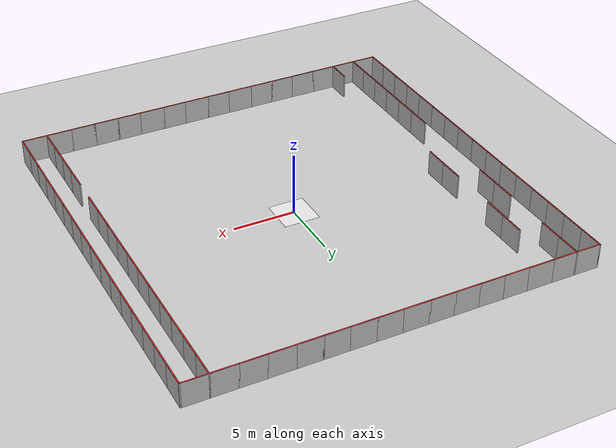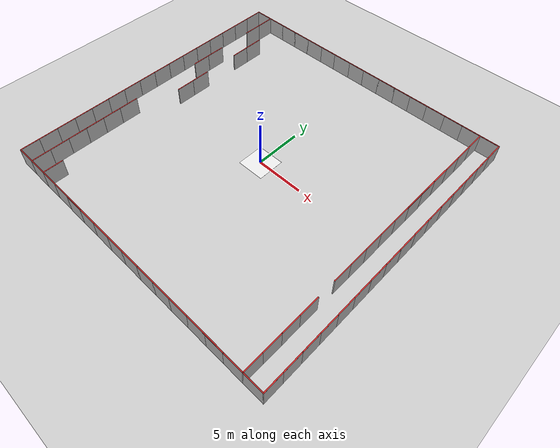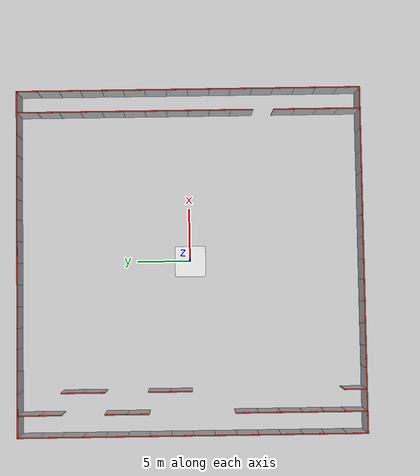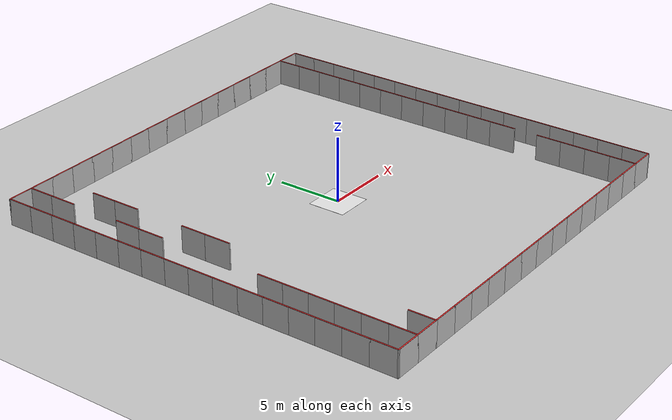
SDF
<sdf version="1.7">
 <world name="default">
  <model name="ground_plane">
   <static>true</static>
   <link name="link">
    <collision name="collision">
     <geometry><plane><normal>0 0 1</normal><size>100 100</size></plane></geometry>
     <surface><friction><ode><mu>100</mu><mu2>50</mu2></ode></friction></surface>
    </collision>
    <visual name="visual">
     <cast_shadows>0</cast_shadows>
     <geometry><plane><normal>0 0 1</normal><size>100 100</size></plane></geometry>
     <material>
      <script><uri>file://media/materials/scripts/gazebo.material</uri><name>Gazebo/Grey</name></script>
     </material>
    </visual>
   </link>
  </model>
  <light name="sun" type="directional">
   <pose>0 0 10 0 -0 0</pose>
   <diffuse>0.8 0.8 0.8 1</diffuse>
   <specular>0.2 0.2 0.2 1</specular>
   <attenuation>
    <range>1000</range>
    <constant>0.9</constant>
    <linear>0.01</linear>
    <quadratic>0.001</quadratic>
   </attenuation>
   <direction>-0.5 0.1 -0.9</direction>
   <spot><inner_angle>0</inner_angle><outer_angle>0</outer_angle><falloff>0</falloff></spot>
  </light>
  <plugin name="maze" filename="libmaze_plugin.so"/>
  <physics type="ode">
   <max_step_size>0.001</max_step_size>
   <real_time_factor>1</real_time_factor>
   <real_time_update_rate>1000</real_time_update_rate>
  </physics>
  <gravity>0 0 -9.8</gravity>
  <magnetic_field>6e-06 2.3e-05 -4.2e-05</magnetic_field>
  <atmosphere type="adiabatic"/>
  <scene><ambient>0.4 0.4 0.4 1</ambient><background>0.7 0.7 0.7 1</background><shadows>1</shadows></scene>
  <audio><device>default</device></audio>
  <spherical_coordinates>
   <surface_model>EARTH_WGS84</surface_model>
   <latitude_deg>0</latitude_deg>
   <longitude_deg>0</longitude_deg>
   <elevation>0</elevation>
   <heading_deg>0</heading_deg>
  </spherical_coordinates>
  <model name="my_maze">
   <link name="base">
    <inertial>
     <mass>1</mass>
     <inertia>
      <ixx>1.39394</ixx>
      <ixy>0</ixy>
      <ixz>0</ixz>
      <iyy>0.696972</iyy>
      <iyz>0</iyz>
      <izz>0.696973</izz>
     </inertia>
     <pose>0 0 0.05 0 -0 0</pose>
    </inertial>
    <visual name="visual">
     <pose>0 0 0.0025 0 -0 0</pose>
     <geometry><box><size>2.892 2.892 0.005</size></box></geometry>
     <material>
      <script><uri>file://media/materials/scripts/gazebo.material</uri><name>Gazebo/White</name></script>
     </material>
    </visual>
    <collision name="collision">
     <pose>0 0 0.0025 0 -0 0</pose>
     <geometry><box><size>2.892 2.892 0.005</size></box></geometry>
     <surface><friction><ode><mu>1000</mu><mu2>1000</mu2></ode></friction></surface>
    </collision>
    <visual name="paint_v_0_0_W">
     <pose>-16 15 2.045 0 -0 1.5708</pose>
     <geometry><box><size>2.1 0.1 0.01</size></box></geometry>
     <material>
      <script><name>Gazebo/Red</name><uri>file://media/materials/scripts/gazebo.material</uri></script>
     </material>
    </visual>
    <visual name="v_0_0_W">
     <pose>-16 15 1.045 0 -0 1.5708</pose>
     <geometry><box><size>2.1 0.1 1.99</size></box></geometry>
    </visual>
    <collision name="p_0_0_W">
     <pose>-16 15 1.05 0 -0 1.5708</pose>
     <geometry><box><size>2.1 0.1 2</size></box></geometry>
    </collision>
    <visual name="paint_v_0_1_W">
     <pose>-14 15 2.045 0 -0 1.5708</pose>
     <geometry><box><size>2.1 0.1 0.01</size></box></geometry>
     <material>
      <script><name>Gazebo/Red</name><uri>file://media/materials/scripts/gazebo.material</uri></script>
     </material>
    </visual>
    <visual name="v_0_1_W">
     <pose>-14 15 1.045 0 -0 1.5708</pose>
     <geometry><box><size>2.1 0.1 1.99</size></box></geometry>
    </visual>
    <collision name="p_0_1_W">
     <pose>-14 15 1.05 0 -0 1.5708</pose>
     <geometry><box><size>2.1 0.1 2</size></box></geometry>
    </collision>
    <visual name="paint_v_0_15_W">
     <pose>14 15 2.045 0 -0 1.5708</pose>
     <geometry><box><size>2.1 0.1 0.01</size></box></geometry>
     <material>
      <script><name>Gazebo/Red</name><uri>file://media/materials/scripts/gazebo.material</uri></script>
     </material>
    </visual>
    <visual name="v_0_15_W">
     <pose>14 15 1.045 0 -0 1.5708</pose>
     <geometry><box><size>2.1 0.1 1.99</size></box></geometry>
    </visual>
    <collision name="p_0_15_W">
     <pose>14 15 1.05 0 -0 1.5708</pose>
     <geometry><box><size>2.1 0.1 2</size></box></geometry>
    </collision>
    <visual name="paint_v_1_0_W">
     <pose>-16 13 2.045 0 -0 1.5708</pose>
     <geometry><box><size>2.1 0.1 0.01</size></box></geometry>
     <material>
      <script><name>Gazebo/Red</name><uri>file://media/materials/scripts/gazebo.material</uri></script>
     </material>
    </visual>
    <visual name="v_1_0_W">
     <pose>-16 13 1.045 0 -0 1.5708</pose>
     <geometry><box><size>2.1 0.1 1.99</size></box></geometry>
    </visual>
    <collision name="p_1_0_W">
     <pose>-16 13 1.05 0 -0 1.5708</pose>
     <geometry><box><size>2.1 0.1 2</size></box></geometry>
    </collision>
    <visual name="paint_v_1_1_W">
     <pose>-14 13 2.045 0 -0 1.5708</pose>
     <geometry><box><size>2.1 0.1 0.01</size></box></geometry>
     <material>
      <script><name>Gazebo/Red</name><uri>file://media/materials/scripts/gazebo.material</uri></script>
     </material>
    </visual>
    <visual name="v_1_1_W">
     <pose>-14 13 1.045 0 -0 1.5708</pose>
     <geometry><box><size>2.1 0.1 1.99</size></box></geometry>
    </visual>
    <collision name="p_1_1_W">
     <pose>-14 13 1.05 0 -0 1.5708</pose>
     <geometry><box><size>2.1 0.1 2</size></box></geometry>
    </collision>
    <visual name="paint_v_1_15_W">
     <pose>14 13 2.045 0 -0 1.5708</pose>
     <geometry><box><size>2.1 0.1 0.01</size></box></geometry>
     <material>
      <script><name>Gazebo/Red</name><uri>file://media/materials/scripts/gazebo.material</uri></script>
     </material>
    </visual>
    <visual name="v_1_15_W">
     <pose>14 13 1.045 0 -0 1.5708</pose>
     <geometry><box><size>2.1 0.1 1.99</size></box></geometry>
    </visual>
    <collision name="p_1_15_W">
     <pose>14 13 1.05 0 -0 1.5708</pose>
     <geometry><box><size>2.1 0.1 2</size></box></geometry>
    </collision>
    <visual name="paint_v_2_0_W">
     <pose>-16 11 2.045 0 -0 1.5708</pose>
     <geometry><box><size>2.1 0.1 0.01</size></box></geometry>
     <material>
      <script><name>Gazebo/Red</name><uri>file://media/materials/scripts/gazebo.material</uri></script>
     </material>
    </visual>
    <visual name="v_2_0_W">
     <pose>-16 11 1.045 0 -0 1.5708</pose>
     <geometry><box><size>2.1 0.1 1.99</size></box></geometry>
    </visual>
    <collision name="p_2_0_W">
     <pose>-16 11 1.05 0 -0 1.5708</pose>
     <geometry><box><size>2.1 0.1 2</size></box></geometry>
    </collision>
    <visual name="paint_v_2_2_W">
     <pose>-12 11 2.045 0 -0 1.5708</pose>
     <geometry><box><size>2.1 0.1 0.01</size></box></geometry>
     <material>
      <script><name>Gazebo/Red</name><uri>file://media/materials/scripts/gazebo.material</uri></script>
     </material>
    </visual>
    <visual name="v_2_2_W">
     <pose>-12 11 1.045 0 -0 1.5708</pose>
     <geometry><box><size>2.1 0.1 1.99</size></box></geometry>
    </visual>
    <collision name="p_2_2_W">
     <pose>-12 11 1.05 0 -0 1.5708</pose>
     <geometry><box><size>2.1 0.1 2</size></box></geometry>
    </collision>
    <visual name="paint_v_2_15_W">
     <pose>14 11 2.045 0 -0 1.5708</pose>
     <geometry><box><size>2.1 0.1 0.01</size></box></geometry>
     <material>
      <script><name>Gazebo/Red</name><uri>file://media/materials/scripts/gazebo.material</uri></script>
     </material>
    </visual>
    <visual name="v_2_15_W">
     <pose>14 11 1.045 0 -0 1.5708</pose>
     <geometry><box><size>2.1 0.1 1.99</size></box></geometry>
    </visual>
    <collision name="p_2_15_W">
     <pose>14 11 1.05 0 -0 1.5708</pose>
     <geometry><box><size>2.1 0.1 2</size></box></geometry>
    </collision>
    <visual name="paint_v_3_0_W">
     <pose>-16 9 2.045 0 -0 1.5708</pose>
     <geometry><box><size>2.1 0.1 0.01</size></box></geometry>
     <material>
      <script><name>Gazebo/Red</name><uri>file://media/materials/scripts/gazebo.material</uri></script>
     </material>
    </visual>
    <visual name="v_3_0_W">
     <pose>-16 9 1.045 0 -0 1.5708</pose>
     <geometry><box><size>2.1 0.1 1.99</size></box></geometry>
    </visual>
    <collision name="p_3_0_W">
     <pose>-16 9 1.05 0 -0 1.5708</pose>
     <geometry><box><size>2.1 0.1 2</size></box></geometry>
    </collision>
    <visual name="paint_v_3_2_W">
     <pose>-12 9 2.045 0 -0 1.5708</pose>
     <geometry><box><size>2.1 0.1 0.01</size></box></geometry>
     <material>
      <script><name>Gazebo/Red</name><uri>file://media/materials/scripts/gazebo.material</uri></script>
     </material>
    </visual>
    <visual name="v_3_2_W">
     <pose>-12 9 1.045 0 -0 1.5708</pose>
     <geometry><box><size>2.1 0.1 1.99</size></box></geometry>
    </visual>
    <collision name="p_3_2_W">
     <pose>-12 9 1.05 0 -0 1.5708</pose>
     <geometry><box><size>2.1 0.1 2</size></box></geometry>
    </collision>
    <visual name="paint_v_3_15_W">
     <pose>14 9 2.045 0 -0 1.5708</pose>
     <geometry><box><size>2.1 0.1 0.01</size></box></geometry>
     <material>
      <script><name>Gazebo/Red</name><uri>file://media/materials/scripts/gazebo.material</uri></script>
     </material>
    </visual>
    <visual name="v_3_15_W">
     <pose>14 9 1.045 0 -0 1.5708</pose>
     <geometry><box><size>2.1 0.1 1.99</size></box></geometry>
    </visual>
    <collision name="p_3_15_W">
     <pose>14 9 1.05 0 -0 1.5708</pose>
     <geometry><box><size>2.1 0.1 2</size></box></geometry>
    </collision>
    <visual name="paint_v_4_0_W">
     <pose>-16 7 2.045 0 -0 1.5708</pose>
     <geometry><box><size>2.1 0.1 0.01</size></box></geometry>
     <material>
      <script><name>Gazebo/Red</name><uri>file://media/materials/scripts/gazebo.material</uri></script>
     </material>
    </visual>
    <visual name="v_4_0_W">
     <pose>-16 7 1.045 0 -0 1.5708</pose>
     <geometry><box><size>2.1 0.1 1.99</size></box></geometry>
    </visual>
    <collision name="p_4_0_W">
     <pose>-16 7 1.05 0 -0 1.5708</pose>
     <geometry><box><size>2.1 0.1 2</size></box></geometry>
    </collision>
    <visual name="paint_v_4_1_W">
     <pose>-14 7 2.045 0 -0 1.5708</pose>
     <geometry><box><size>2.1 0.1 0.01</size></box></geometry>
     <material>
      <script><name>Gazebo/Red</name><uri>file://media/materials/scripts/gazebo.material</uri></script>
     </material>
    </visual>
    <visual name="v_4_1_W">
     <pose>-14 7 1.045 0 -0 1.5708</pose>
     <geometry><box><size>2.1 0.1 1.99</size></box></geometry>
    </visual>
    <collision name="p_4_1_W">
     <pose>-14 7 1.05 0 -0 1.5708</pose>
     <geometry><box><size>2.1 0.1 2</size></box></geometry>
    </collision>
    <visual name="paint_v_4_15_W">
     <pose>14 7 2.045 0 -0 1.5708</pose>
     <geometry><box><size>2.1 0.1 0.01</size></box></geometry>
     <material>
      <script><name>Gazebo/Red</name><uri>file://media/materials/scripts/gazebo.material</uri></script>
     </material>
    </visual>
    <visual name="v_4_15_W">
     <pose>14 7 1.045 0 -0 1.5708</pose>
     <geometry><box><size>2.1 0.1 1.99</size></box></geometry>
    </visual>
    <collision name="p_4_15_W">
     <pose>14 7 1.05 0 -0 1.5708</pose>
     <geometry><box><size>2.1 0.1 2</size></box></geometry>
    </collision>
    <visual name="paint_v_5_0_W">
     <pose>-16 5 2.045 0 -0 1.5708</pose>
     <geometry><box><size>2.1 0.1 0.01</size></box></geometry>
     <material>
      <script><name>Gazebo/Red</name><uri>file://media/materials/scripts/gazebo.material</uri></script>
     </material>
    </visual>
    <visual name="v_5_0_W">
     <pose>-16 5 1.045 0 -0 1.5708</pose>
     <geometry><box><size>2.1 0.1 1.99</size></box></geometry>
    </visual>
    <collision name="p_5_0_W">
     <pose>-16 5 1.05 0 -0 1.5708</pose>
     <geometry><box><size>2.1 0.1 2</size></box></geometry>
    </collision>
    <visual name="paint_v_5_1_W">
     <pose>-14 5 2.045 0 -0 1.5708</pose>
     <geometry><box><size>2.1 0.1 0.01</size></box></geometry>
     <material>
      <script><name>Gazebo/Red</name><uri>file://media/materials/scripts/gazebo.material</uri></script>
     </material>
    </visual>
    <visual name="v_5_1_W">
     <pose>-14 5 1.045 0 -0 1.5708</pose>
     <geometry><box><size>2.1 0.1 1.99</size></box></geometry>
    </visual>
    <collision name="p_5_1_W">
     <pose>-14 5 1.05 0 -0 1.5708</pose>
     <geometry><box><size>2.1 0.1 2</size></box></geometry>
    </collision>
    <visual name="paint_v_5_15_W">
     <pose>14 5 2.045 0 -0 1.5708</pose>
     <geometry><box><size>2.1 0.1 0.01</size></box></geometry>
     <material>
      <script><name>Gazebo/Red</name><uri>file://media/materials/scripts/gazebo.material</uri></script>
     </material>
    </visual>
    <visual name="v_5_15_W">
     <pose>14 5 1.045 0 -0 1.5708</pose>
     <geometry><box><size>2.1 0.1 1.99</size></box></geometry>
    </visual>
    <collision name="p_5_15_W">
     <pose>14 5 1.05 0 -0 1.5708</pose>
     <geometry><box><size>2.1 0.1 2</size></box></geometry>
    </collision>
    <visual name="paint_v_6_0_W">
     <pose>-16 3 2.045 0 -0 1.5708</pose>
     <geometry><box><size>2.1 0.1 0.01</size></box></geometry>
     <material>
      <script><name>Gazebo/Red</name><uri>file://media/materials/scripts/gazebo.material</uri></script>
     </material>
    </visual>
    <visual name="v_6_0_W">
     <pose>-16 3 1.045 0 -0 1.5708</pose>
     <geometry><box><size>2.1 0.1 1.99</size></box></geometry>
    </visual>
    <collision name="p_6_0_W">
     <pose>-16 3 1.05 0 -0 1.5708</pose>
     <geometry><box><size>2.1 0.1 2</size></box></geometry>
    </collision>
    <visual name="paint_v_6_2_W">
     <pose>-12 3 2.045 0 -0 1.5708</pose>
     <geometry><box><size>2.1 0.1 0.01</size></box></geometry>
     <material>
      <script><name>Gazebo/Red</name><uri>file://media/materials/scripts/gazebo.material</uri></script>
     </material>
    </visual>
    <visual name="v_6_2_W">
     <pose>-12 3 1.045 0 -0 1.5708</pose>
     <geometry><box><size>2.1 0.1 1.99</size></box></geometry>
    </visual>
    <collision name="p_6_2_W">
     <pose>-12 3 1.05 0 -0 1.5708</pose>
     <geometry><box><size>2.1 0.1 2</size></box></geometry>
    </collision>
    <visual name="paint_v_6_15_W">
     <pose>14 3 2.045 0 -0 1.5708</pose>
     <geometry><box><size>2.1 0.1 0.01</size></box></geometry>
     <material>
      <script><name>Gazebo/Red</name><uri>file://media/materials/scripts/gazebo.material</uri></script>
     </material>
    </visual>
    <visual name="v_6_15_W">
     <pose>14 3 1.045 0 -0 1.5708</pose>
     <geometry><box><size>2.1 0.1 1.99</size></box></geometry>
    </visual>
    <collision name="p_6_15_W">
     <pose>14 3 1.05 0 -0 1.5708</pose>
     <geometry><box><size>2.1 0.1 2</size></box></geometry>
    </collision>
    <visual name="paint_v_7_0_W">
     <pose>-16 1 2.045 0 -0 1.5708</pose>
     <geometry><box><size>2.1 0.1 0.01</size></box></geometry>
     <material>
      <script><name>Gazebo/Red</name><uri>file://media/materials/scripts/gazebo.material</uri></script>
     </material>
    </visual>
    <visual name="v_7_0_W">
     <pose>-16 1 1.045 0 -0 1.5708</pose>
     <geometry><box><size>2.1 0.1 1.99</size></box></geometry>
    </visual>
    <collision name="p_7_0_W">
     <pose>-16 1 1.05 0 -0 1.5708</pose>
     <geometry><box><size>2.1 0.1 2</size></box></geometry>
    </collision>
    <visual name="paint_v_7_2_W">
     <pose>-12 1 2.045 0 -0 1.5708</pose>
     <geometry><box><size>2.1 0.1 0.01</size></box></geometry>
     <material>
      <script><name>Gazebo/Red</name><uri>file://media/materials/scripts/gazebo.material</uri></script>
     </material>
    </visual>
    <visual name="v_7_2_W">
     <pose>-12 1 1.045 0 -0 1.5708</pose>
     <geometry><box><size>2.1 0.1 1.99</size></box></geometry>
    </visual>
    <collision name="p_7_2_W">
     <pose>-12 1 1.05 0 -0 1.5708</pose>
     <geometry><box><size>2.1 0.1 2</size></box></geometry>
    </collision>
    <visual name="paint_v_7_15_W">
     <pose>14 1 2.045 0 -0 1.5708</pose>
     <geometry><box><size>2.1 0.1 0.01</size></box></geometry>
     <material>
      <script><name>Gazebo/Red</name><uri>file://media/materials/scripts/gazebo.material</uri></script>
     </material>
    </visual>
    <visual name="v_7_15_W">
     <pose>14 1 1.045 0 -0 1.5708</pose>
     <geometry><box><size>2.1 0.1 1.99</size></box></geometry>
    </visual>
    <collision name="p_7_15_W">
     <pose>14 1 1.05 0 -0 1.5708</pose>
     <geometry><box><size>2.1 0.1 2</size></box></geometry>
    </collision>
    <visual name="paint_v_8_0_W">
     <pose>-16 -1 2.045 0 -0 1.5708</pose>
     <geometry><box><size>2.1 0.1 0.01</size></box></geometry>
     <material>
      <script><name>Gazebo/Red</name><uri>file://media/materials/scripts/gazebo.material</uri></script>
     </material>
    </visual>
    <visual name="v_8_0_W">
     <pose>-16 -1 1.045 0 -0 1.5708</pose>
     <geometry><box><size>2.1 0.1 1.99</size></box></geometry>
    </visual>
    <collision name="p_8_0_W">
     <pose>-16 -1 1.05 0 -0 1.5708</pose>
     <geometry><box><size>2.1 0.1 2</size></box></geometry>
    </collision>
    <visual name="paint_v_8_15_W">
     <pose>14 -1 2.045 0 -0 1.5708</pose>
     <geometry><box><size>2.1 0.1 0.01</size></box></geometry>
     <material>
      <script><name>Gazebo/Red</name><uri>file://media/materials/scripts/gazebo.material</uri></script>
     </material>
    </visual>
    <visual name="v_8_15_W">
     <pose>14 -1 1.045 0 -0 1.5708</pose>
     <geometry><box><size>2.1 0.1 1.99</size></box></geometry>
    </visual>
    <collision name="p_8_15_W">
     <pose>14 -1 1.05 0 -0 1.5708</pose>
     <geometry><box><size>2.1 0.1 2</size></box></geometry>
    </collision>
    <visual name="paint_v_9_0_W">
     <pose>-16 -3 2.045 0 -0 1.5708</pose>
     <geometry><box><size>2.1 0.1 0.01</size></box></geometry>
     <material>
      <script><name>Gazebo/Red</name><uri>file://media/materials/scripts/gazebo.material</uri></script>
     </material>
    </visual>
    <visual name="v_9_0_W">
     <pose>-16 -3 1.045 0 -0 1.5708</pose>
     <geometry><box><size>2.1 0.1 1.99</size></box></geometry>
    </visual>
    <collision name="p_9_0_W">
     <pose>-16 -3 1.05 0 -0 1.5708</pose>
     <geometry><box><size>2.1 0.1 2</size></box></geometry>
    </collision>
    <visual name="paint_v_9_15_W">
     <pose>14 -3 2.045 0 -0 1.5708</pose>
     <geometry><box><size>2.1 0.1 0.01</size></box></geometry>
     <material>
      <script><name>Gazebo/Red</name><uri>file://media/materials/scripts/gazebo.material</uri></script>
     </material>
    </visual>
    <visual name="v_9_15_W">
     <pose>14 -3 1.045 0 -0 1.5708</pose>
     <geometry><box><size>2.1 0.1 1.99</size></box></geometry>
    </visual>
    <collision name="p_9_15_W">
     <pose>14 -3 1.05 0 -0 1.5708</pose>
     <geometry><box><size>2.1 0.1 2</size></box></geometry>
    </collision>
    <visual name="paint_v_10_0_W">
     <pose>-16 -5 2.045 0 -0 1.5708</pose>
     <geometry><box><size>2.1 0.1 0.01</size></box></geometry>
     <material>
      <script><name>Gazebo/Red</name><uri>file://media/materials/scripts/gazebo.material</uri></script>
     </material>
    </visual>
    <visual name="v_10_0_W">
     <pose>-16 -5 1.045 0 -0 1.5708</pose>
     <geometry><box><size>2.1 0.1 1.99</size></box></geometry>
    </visual>
    <collision name="p_10_0_W">
     <pose>-16 -5 1.05 0 -0 1.5708</pose>
     <geometry><box><size>2.1 0.1 2</size></box></geometry>
    </collision>
    <visual name="paint_v_10_1_W">
     <pose>-14 -5 2.045 0 -0 1.5708</pose>
     <geometry><box><size>2.1 0.1 0.01</size></box></geometry>
     <material>
      <script><name>Gazebo/Red</name><uri>file://media/materials/scripts/gazebo.material</uri></script>
     </material>
    </visual>
    <visual name="v_10_1_W">
     <pose>-14 -5 1.045 0 -0 1.5708</pose>
     <geometry><box><size>2.1 0.1 1.99</size></box></geometry>
    </visual>
    <collision name="p_10_1_W">
     <pose>-14 -5 1.05 0 -0 1.5708</pose>
     <geometry><box><size>2.1 0.1 2</size></box></geometry>
    </collision>
    <visual name="paint_v_10_15_W">
     <pose>14 -5 2.045 0 -0 1.5708</pose>
     <geometry><box><size>2.1 0.1 0.01</size></box></geometry>
     <material>
      <script><name>Gazebo/Red</name><uri>file://media/materials/scripts/gazebo.material</uri></script>
     </material>
    </visual>
    <visual name="v_10_15_W">
     <pose>14 -5 1.045 0 -0 1.5708</pose>
     <geometry><box><size>2.1 0.1 1.99</size></box></geometry>
    </visual>
    <collision name="p_10_15_W">
     <pose>14 -5 1.05 0 -0 1.5708</pose>
     <geometry><box><size>2.1 0.1 2</size></box></geometry>
    </collision>
    <visual name="paint_v_11_0_W">
     <pose>-16 -7 2.045 0 -0 1.5708</pose>
     <geometry><box><size>2.1 0.1 0.01</size></box></geometry>
     <material>
      <script><name>Gazebo/Red</name><uri>file://media/materials/scripts/gazebo.material</uri></script>
     </material>
    </visual>
    <visual name="v_11_0_W">
     <pose>-16 -7 1.045 0 -0 1.5708</pose>
     <geometry><box><size>2.1 0.1 1.99</size></box></geometry>
    </visual>
    <collision name="p_11_0_W">
     <pose>-16 -7 1.05 0 -0 1.5708</pose>
     <geometry><box><size>2.1 0.1 2</size></box></geometry>
    </collision>
    <visual name="paint_v_11_1_W">
     <pose>-14 -7 2.045 0 -0 1.5708</pose>
     <geometry><box><size>2.1 0.1 0.01</size></box></geometry>
     <material>
      <script><name>Gazebo/Red</name><uri>file://media/materials/scripts/gazebo.material</uri></script>
     </material>
    </visual>
    <visual name="v_11_1_W">
     <pose>-14 -7 1.045 0 -0 1.5708</pose>
     <geometry><box><size>2.1 0.1 1.99</size></box></geometry>
    </visual>
    <collision name="p_11_1_W">
     <pose>-14 -7 1.05 0 -0 1.5708</pose>
     <geometry><box><size>2.1 0.1 2</size></box></geometry>
    </collision>
    <visual name="paint_v_12_0_W">
     <pose>-16 -9 2.045 0 -0 1.5708</pose>
     <geometry><box><size>2.1 0.1 0.01</size></box></geometry>
     <material>
      <script><name>Gazebo/Red</name><uri>file://media/materials/scripts/gazebo.material</uri></script>
     </material>
    </visual>
    <visual name="v_12_0_W">
     <pose>-16 -9 1.045 0 -0 1.5708</pose>
     <geometry><box><size>2.1 0.1 1.99</size></box></geometry>
    </visual>
    <collision name="p_12_0_W">
     <pose>-16 -9 1.05 0 -0 1.5708</pose>
     <geometry><box><size>2.1 0.1 2</size></box></geometry>
    </collision>
    <visual name="paint_v_12_1_W">
     <pose>-14 -9 2.045 0 -0 1.5708</pose>
     <geometry><box><size>2.1 0.1 0.01</size></box></geometry>
     <material>
      <script><name>Gazebo/Red</name><uri>file://media/materials/scripts/gazebo.material</uri></script>
     </material>
    </visual>
    <visual name="v_12_1_W">
     <pose>-14 -9 1.045 0 -0 1.5708</pose>
     <geometry><box><size>2.1 0.1 1.99</size></box></geometry>
    </visual>
    <collision name="p_12_1_W">
     <pose>-14 -9 1.05 0 -0 1.5708</pose>
     <geometry><box><size>2.1 0.1 2</size></box></geometry>
    </collision>
    <visual name="paint_v_12_15_W">
     <pose>14 -9 2.045 0 -0 1.5708</pose>
     <geometry><box><size>2.1 0.1 0.01</size></box></geometry>
     <material>
      <script><name>Gazebo/Red</name><uri>file://media/materials/scripts/gazebo.material</uri></script>
     </material>
    </visual>
    <visual name="v_12_15_W">
     <pose>14 -9 1.045 0 -0 1.5708</pose>
     <geometry><box><size>2.1 0.1 1.99</size></box></geometry>
    </visual>
    <collision name="p_12_15_W">
     <pose>14 -9 1.05 0 -0 1.5708</pose>
     <geometry><box><size>2.1 0.1 2</size></box></geometry>
    </collision>
    <visual name="paint_v_13_0_W">
     <pose>-16 -11 2.045 0 -0 1.5708</pose>
     <geometry><box><size>2.1 0.1 0.01</size></box></geometry>
     <material>
      <script><name>Gazebo/Red</name><uri>file://media/materials/scripts/gazebo.material</uri></script>
     </material>
    </visual>
    <visual name="v_13_0_W">
     <pose>-16 -11 1.045 0 -0 1.5708</pose>
     <geometry><box><size>2.1 0.1 1.99</size></box></geometry>
    </visual>
    <collision name="p_13_0_W">
     <pose>-16 -11 1.05 0 -0 1.5708</pose>
     <geometry><box><size>2.1 0.1 2</size></box></geometry>
    </collision>
    <visual name="paint_v_13_1_W">
     <pose>-14 -11 2.045 0 -0 1.5708</pose>
     <geometry><box><size>2.1 0.1 0.01</size></box></geometry>
     <material>
      <script><name>Gazebo/Red</name><uri>file://media/materials/scripts/gazebo.material</uri></script>
     </material>
    </visual>
    <visual name="v_13_1_W">
     <pose>-14 -11 1.045 0 -0 1.5708</pose>
     <geometry><box><size>2.1 0.1 1.99</size></box></geometry>
    </visual>
    <collision name="p_13_1_W">
     <pose>-14 -11 1.05 0 -0 1.5708</pose>
     <geometry><box><size>2.1 0.1 2</size></box></geometry>
    </collision>
    <visual name="paint_v_13_15_W">
     <pose>14 -11 2.045 0 -0 1.5708</pose>
     <geometry><box><size>2.1 0.1 0.01</size></box></geometry>
     <material>
      <script><name>Gazebo/Red</name><uri>file://media/materials/scripts/gazebo.material</uri></script>
     </material>
    </visual>
    <visual name="v_13_15_W">
     <pose>14 -11 1.045 0 -0 1.5708</pose>
     <geometry><box><size>2.1 0.1 1.99</size></box></geometry>
    </visual>
    <collision name="p_13_15_W">
     <pose>14 -11 1.05 0 -0 1.5708</pose>
     <geometry><box><size>2.1 0.1 2</size></box></geometry>
    </collision>
    <visual name="paint_v_14_0_W">
     <pose>-16 -13 2.045 0 -0 1.5708</pose>
     <geometry><box><size>2.1 0.1 0.01</size></box></geometry>
     <material>
      <script><name>Gazebo/Red</name><uri>file://media/materials/scripts/gazebo.material</uri></script>
     </material>
    </visual>
    <visual name="v_14_0_W">
     <pose>-16 -13 1.045 0 -0 1.5708</pose>
     <geometry><box><size>2.1 0.1 1.99</size></box></geometry>
    </visual>
    <collision name="p_14_0_W">
     <pose>-16 -13 1.05 0 -0 1.5708</pose>
     <geometry><box><size>2.1 0.1 2</size></box></geometry>
    </collision>
    <visual name="paint_v_14_1_W">
     <pose>-14 -13 2.045 0 -0 1.5708</pose>
     <geometry><box><size>2.1 0.1 0.01</size></box></geometry>
     <material>
      <script><name>Gazebo/Red</name><uri>file://media/materials/scripts/gazebo.material</uri></script>
     </material>
    </visual>
    <visual name="v_14_1_W">
     <pose>-14 -13 1.045 0 -0 1.5708</pose>
     <geometry><box><size>2.1 0.1 1.99</size></box></geometry>
    </visual>
    <collision name="p_14_1_W">
     <pose>-14 -13 1.05 0 -0 1.5708</pose>
     <geometry><box><size>2.1 0.1 2</size></box></geometry>
    </collision>
    <visual name="paint_v_14_15_W">
     <pose>14 -13 2.045 0 -0 1.5708</pose>
     <geometry><box><size>2.1 0.1 0.01</size></box></geometry>
     <material>
      <script><name>Gazebo/Red</name><uri>file://media/materials/scripts/gazebo.material</uri></script>
     </material>
    </visual>
    <visual name="v_14_15_W">
     <pose>14 -13 1.045 0 -0 1.5708</pose>
     <geometry><box><size>2.1 0.1 1.99</size></box></geometry>
    </visual>
    <collision name="p_14_15_W">
     <pose>14 -13 1.05 0 -0 1.5708</pose>
     <geometry><box><size>2.1 0.1 2</size></box></geometry>
    </collision>
    <visual name="paint_v_15_0_W">
     <pose>-16 -15 2.045 0 -0 1.5708</pose>
     <geometry><box><size>2.1 0.1 0.01</size></box></geometry>
     <material>
      <script><name>Gazebo/Red</name><uri>file://media/materials/scripts/gazebo.material</uri></script>
     </material>
    </visual>
    <visual name="v_15_0_W">
     <pose>-16 -15 1.045 0 -0 1.5708</pose>
     <geometry><box><size>2.1 0.1 1.99</size></box></geometry>
    </visual>
    <collision name="p_15_0_W">
     <pose>-16 -15 1.05 0 -0 1.5708</pose>
     <geometry><box><size>2.1 0.1 2</size></box></geometry>
    </collision>
    <visual name="paint_v_15_0_S">
     <pose>-15 -16 2.045 0 -0 0</pose>
     <geometry><box><size>2.1 0.1 0.01</size></box></geometry>
     <material>
      <script><name>Gazebo/Red</name><uri>file://media/materials/scripts/gazebo.material</uri></script>
     </material>
    </visual>
    <visual name="v_15_0_S">
     <pose>-15 -16 1.045 0 -0 0</pose>
     <geometry><box><size>2.1 0.1 1.99</size></box></geometry>
    </visual>
    <collision name="p_15_0_S">
     <pose>-15 -16 1.05 0 -0 0</pose>
     <geometry><box><size>2.1 0.1 2</size></box></geometry>
    </collision>
    <visual name="paint_v_15_1_W">
     <pose>-14 -15 2.045 0 -0 1.5708</pose>
     <geometry><box><size>2.1 0.1 0.01</size></box></geometry>
     <material>
      <script><name>Gazebo/Red</name><uri>file://media/materials/scripts/gazebo.material</uri></script>
     </material>
    </visual>
    <visual name="v_15_1_W">
     <pose>-14 -15 1.045 0 -0 1.5708</pose>
     <geometry><box><size>2.1 0.1 1.99</size></box></geometry>
    </visual>
    <collision name="p_15_1_W">
     <pose>-14 -15 1.05 0 -0 1.5708</pose>
     <geometry><box><size>2.1 0.1 2</size></box></geometry>
    </collision>
    <visual name="paint_v_15_1_S">
     <pose>-13 -16 2.045 0 -0 0</pose>
     <geometry><box><size>2.1 0.1 0.01</size></box></geometry>
     <material>
      <script><name>Gazebo/Red</name><uri>file://media/materials/scripts/gazebo.material</uri></script>
     </material>
    </visual>
    <visual name="v_15_1_S">
     <pose>-13 -16 1.045 0 -0 0</pose>
     <geometry><box><size>2.1 0.1 1.99</size></box></geometry>
    </visual>
    <collision name="p_15_1_S">
     <pose>-13 -16 1.05 0 -0 0</pose>
     <geometry><box><size>2.1 0.1 2</size></box></geometry>
    </collision>
    <visual name="paint_v_15_2_W">
     <pose>-12 -15 2.045 0 -0 1.5708</pose>
     <geometry><box><size>2.1 0.1 0.01</size></box></geometry>
     <material>
      <script><name>Gazebo/Red</name><uri>file://media/materials/scripts/gazebo.material</uri></script>
     </material>
    </visual>
    <visual name="v_15_2_W">
     <pose>-12 -15 1.045 0 -0 1.5708</pose>
     <geometry><box><size>2.1 0.1 1.99</size></box></geometry>
    </visual>
    <collision name="p_15_2_W">
     <pose>-12 -15 1.05 0 -0 1.5708</pose>
     <geometry><box><size>2.1 0.1 2</size></box></geometry>
    </collision>
    <visual name="paint_v_15_2_S">
     <pose>-11 -16 2.045 0 -0 0</pose>
     <geometry><box><size>2.1 0.1 0.01</size></box></geometry>
     <material>
      <script><name>Gazebo/Red</name><uri>file://media/materials/scripts/gazebo.material</uri></script>
     </material>
    </visual>
    <visual name="v_15_2_S">
     <pose>-11 -16 1.045 0 -0 0</pose>
     <geometry><box><size>2.1 0.1 1.99</size></box></geometry>
    </visual>
    <collision name="p_15_2_S">
     <pose>-11 -16 1.05 0 -0 0</pose>
     <geometry><box><size>2.1 0.1 2</size></box></geometry>
    </collision>
    <visual name="paint_v_15_3_S">
     <pose>-9 -16 2.045 0 -0 0</pose>
     <geometry><box><size>2.1 0.1 0.01</size></box></geometry>
     <material>
      <script><name>Gazebo/Red</name><uri>file://media/materials/scripts/gazebo.material</uri></script>
     </material>
    </visual>
    <visual name="v_15_3_S">
     <pose>-9 -16 1.045 0 -0 0</pose>
     <geometry><box><size>2.1 0.1 1.99</size></box></geometry>
    </visual>
    <collision name="p_15_3_S">
     <pose>-9 -16 1.05 0 -0 0</pose>
     <geometry><box><size>2.1 0.1 2</size></box></geometry>
    </collision>
    <visual name="paint_v_15_4_S">
     <pose>-7 -16 2.045 0 -0 0</pose>
     <geometry><box><size>2.1 0.1 0.01</size></box></geometry>
     <material>
      <script><name>Gazebo/Red</name><uri>file://media/materials/scripts/gazebo.material</uri></script>
     </material>
    </visual>
    <visual name="v_15_4_S">
     <pose>-7 -16 1.045 0 -0 0</pose>
     <geometry><box><size>2.1 0.1 1.99</size></box></geometry>
    </visual>
    <collision name="p_15_4_S">
     <pose>-7 -16 1.05 0 -0 0</pose>
     <geometry><box><size>2.1 0.1 2</size></box></geometry>
    </collision>
    <visual name="paint_v_15_5_S">
     <pose>-5 -16 2.045 0 -0 0</pose>
     <geometry><box><size>2.1 0.1 0.01</size></box></geometry>
     <material>
      <script><name>Gazebo/Red</name><uri>file://media/materials/scripts/gazebo.material</uri></script>
     </material>
    </visual>
    <visual name="v_15_5_S">
     <pose>-5 -16 1.045 0 -0 0</pose>
     <geometry><box><size>2.1 0.1 1.99</size></box></geometry>
    </visual>
    <collision name="p_15_5_S">
     <pose>-5 -16 1.05 0 -0 0</pose>
     <geometry><box><size>2.1 0.1 2</size></box></geometry>
    </collision>
    <visual name="paint_v_15_6_S">
     <pose>-3 -16 2.045 0 -0 0</pose>
     <geometry><box><size>2.1 0.1 0.01</size></box></geometry>
     <material>
      <script><name>Gazebo/Red</name><uri>file://media/materials/scripts/gazebo.material</uri></script>
     </material>
    </visual>
    <visual name="v_15_6_S">
     <pose>-3 -16 1.045 0 -0 0</pose>
     <geometry><box><size>2.1 0.1 1.99</size></box></geometry>
    </visual>
    <collision name="p_15_6_S">
     <pose>-3 -16 1.05 0 -0 0</pose>
     <geometry><box><size>2.1 0.1 2</size></box></geometry>
    </collision>
    <visual name="paint_v_15_7_S">
     <pose>-1 -16 2.045 0 -0 0</pose>
     <geometry><box><size>2.1 0.1 0.01</size></box></geometry>
     <material>
      <script><name>Gazebo/Red</name><uri>file://media/materials/scripts/gazebo.material</uri></script>
     </material>
    </visual>
    <visual name="v_15_7_S">
     <pose>-1 -16 1.045 0 -0 0</pose>
     <geometry><box><size>2.1 0.1 1.99</size></box></geometry>
    </visual>
    <collision name="p_15_7_S">
     <pose>-1 -16 1.05 0 -0 0</pose>
     <geometry><box><size>2.1 0.1 2</size></box></geometry>
    </collision>
    <visual name="paint_v_15_8_S">
     <pose>1 -16 2.045 0 -0 0</pose>
     <geometry><box><size>2.1 0.1 0.01</size></box></geometry>
     <material>
      <script><name>Gazebo/Red</name><uri>file://media/materials/scripts/gazebo.material</uri></script>
     </material>
    </visual>
    <visual name="v_15_8_S">
     <pose>1 -16 1.045 0 -0 0</pose>
     <geometry><box><size>2.1 0.1 1.99</size></box></geometry>
    </visual>
    <collision name="p_15_8_S">
     <pose>1 -16 1.05 0 -0 0</pose>
     <geometry><box><size>2.1 0.1 2</size></box></geometry>
    </collision>
    <visual name="paint_v_15_9_S">
     <pose>3 -16 2.045 0 -0 0</pose>
     <geometry><box><size>2.1 0.1 0.01</size></box></geometry>
     <material>
      <script><name>Gazebo/Red</name><uri>file://media/materials/scripts/gazebo.material</uri></script>
     </material>
    </visual>
    <visual name="v_15_9_S">
     <pose>3 -16 1.045 0 -0 0</pose>
     <geometry><box><size>2.1 0.1 1.99</size></box></geometry>
    </visual>
    <collision name="p_15_9_S">
     <pose>3 -16 1.05 0 -0 0</pose>
     <geometry><box><size>2.1 0.1 2</size></box></geometry>
    </collision>
    <visual name="paint_v_15_10_S">
     <pose>5 -16 2.045 0 -0 0</pose>
     <geometry><box><size>2.1 0.1 0.01</size></box></geometry>
     <material>
      <script><name>Gazebo/Red</name><uri>file://media/materials/scripts/gazebo.material</uri></script>
     </material>
    </visual>
    <visual name="v_15_10_S">
     <pose>5 -16 1.045 0 -0 0</pose>
     <geometry><box><size>2.1 0.1 1.99</size></box></geometry>
    </visual>
    <collision name="p_15_10_S">
     <pose>5 -16 1.05 0 -0 0</pose>
     <geometry><box><size>2.1 0.1 2</size></box></geometry>
    </collision>
    <visual name="paint_v_15_11_S">
     <pose>7 -16 2.045 0 -0 0</pose>
     <geometry><box><size>2.1 0.1 0.01</size></box></geometry>
     <material>
      <script><name>Gazebo/Red</name><uri>file://media/materials/scripts/gazebo.material</uri></script>
     </material>
    </visual>
    <visual name="v_15_11_S">
     <pose>7 -16 1.045 0 -0 0</pose>
     <geometry><box><size>2.1 0.1 1.99</size></box></geometry>
    </visual>
    <collision name="p_15_11_S">
     <pose>7 -16 1.05 0 -0 0</pose>
     <geometry><box><size>2.1 0.1 2</size></box></geometry>
    </collision>
    <visual name="paint_v_15_12_S">
     <pose>9 -16 2.045 0 -0 0</pose>
     <geometry><box><size>2.1 0.1 0.01</size></box></geometry>
     <material>
      <script><name>Gazebo/Red</name><uri>file://media/materials/scripts/gazebo.material</uri></script>
     </material>
    </visual>
    <visual name="v_15_12_S">
     <pose>9 -16 1.045 0 -0 0</pose>
     <geometry><box><size>2.1 0.1 1.99</size></box></geometry>
    </visual>
    <collision name="p_15_12_S">
     <pose>9 -16 1.05 0 -0 0</pose>
     <geometry><box><size>2.1 0.1 2</size></box></geometry>
    </collision>
    <visual name="paint_v_15_13_S">
     <pose>11 -16 2.045 0 -0 0</pose>
     <geometry><box><size>2.1 0.1 0.01</size></box></geometry>
     <material>
      <script><name>Gazebo/Red</name><uri>file://media/materials/scripts/gazebo.material</uri></script>
     </material>
    </visual>
    <visual name="v_15_13_S">
     <pose>11 -16 1.045 0 -0 0</pose>
     <geometry><box><size>2.1 0.1 1.99</size></box></geometry>
    </visual>
    <collision name="p_15_13_S">
     <pose>11 -16 1.05 0 -0 0</pose>
     <geometry><box><size>2.1 0.1 2</size></box></geometry>
    </collision>
    <visual name="paint_v_15_14_S">
     <pose>13 -16 2.045 0 -0 0</pose>
     <geometry><box><size>2.1 0.1 0.01</size></box></geometry>
     <material>
      <script><name>Gazebo/Red</name><uri>file://media/materials/scripts/gazebo.material</uri></script>
     </material>
    </visual>
    <visual name="v_15_14_S">
     <pose>13 -16 1.045 0 -0 0</pose>
     <geometry><box><size>2.1 0.1 1.99</size></box></geometry>
    </visual>
    <collision name="p_15_14_S">
     <pose>13 -16 1.05 0 -0 0</pose>
     <geometry><box><size>2.1 0.1 2</size></box></geometry>
    </collision>
    <visual name="paint_v_15_15_W">
     <pose>14 -15 2.045 0 -0 1.5708</pose>
     <geometry><box><size>2.1 0.1 0.01</size></box></geometry>
     <material>
      <script><name>Gazebo/Red</name><uri>file://media/materials/scripts/gazebo.material</uri></script>
     </material>
    </visual>
    <visual name="v_15_15_W">
     <pose>14 -15 1.045 0 -0 1.5708</pose>
     <geometry><box><size>2.1 0.1 1.99</size></box></geometry>
    </visual>
    <collision name="p_15_15_W">
     <pose>14 -15 1.05 0 -0 1.5708</pose>
     <geometry><box><size>2.1 0.1 2</size></box></geometry>
    </collision>
    <visual name="paint_v_15_15_S">
     <pose>15 -16 2.045 0 -0 0</pose>
     <geometry><box><size>2.1 0.1 0.01</size></box></geometry>
     <material>
      <script><name>Gazebo/Red</name><uri>file://media/materials/scripts/gazebo.material</uri></script>
     </material>
    </visual>
    <visual name="v_15_15_S">
     <pose>15 -16 1.045 0 -0 0</pose>
     <geometry><box><size>2.1 0.1 1.99</size></box></geometry>
    </visual>
    <collision name="p_15_15_S">
     <pose>15 -16 1.05 0 -0 0</pose>
     <geometry><box><size>2.1 0.1 2</size></box></geometry>
    </collision>
    <visual name="paint_v_0_15_E">
     <pose>16 15 2.045 0 -0 1.5708</pose>
     <geometry><box><size>2.1 0.1 0.01</size></box></geometry>
     <material>
      <script><name>Gazebo/Red</name><uri>file://media/materials/scripts/gazebo.material</uri></script>
     </material>
    </visual>
    <visual name="v_0_15_E">
     <pose>16 15 1.045 0 -0 1.5708</pose>
     <geometry><box><size>2.1 0.1 1.99</size></box></geometry>
    </visual>
    <collision name="p_0_15_E">
     <pose>16 15 1.05 0 -0 1.5708</pose>
     <geometry><box><size>2.1 0.1 2</size></box></geometry>
    </collision>
    <visual name="paint_v_0_0_N">
     <pose>-15 16 2.045 0 -0 0</pose>
     <geometry><box><size>2.1 0.1 0.01</size></box></geometry>
     <material>
      <script><name>Gazebo/Red</name><uri>file://media/materials/scripts/gazebo.material</uri></script>
     </material>
    </visual>
    <visual name="v_0_0_N">
     <pose>-15 16 1.045 0 -0 0</pose>
     <geometry><box><size>2.1 0.1 1.99</size></box></geometry>
    </visual>
    <collision name="p_0_0_N">
     <pose>-15 16 1.05 0 -0 0</pose>
     <geometry><box><size>2.1 0.1 2</size></box></geometry>
    </collision>
    <visual name="paint_v_1_15_E">
     <pose>16 13 2.045 0 -0 1.5708</pose>
     <geometry><box><size>2.1 0.1 0.01</size></box></geometry>
     <material>
      <script><name>Gazebo/Red</name><uri>file://media/materials/scripts/gazebo.material</uri></script>
     </material>
    </visual>
    <visual name="v_1_15_E">
     <pose>16 13 1.045 0 -0 1.5708</pose>
     <geometry><box><size>2.1 0.1 1.99</size></box></geometry>
    </visual>
    <collision name="p_1_15_E">
     <pose>16 13 1.05 0 -0 1.5708</pose>
     <geometry><box><size>2.1 0.1 2</size></box></geometry>
    </collision>
    <visual name="paint_v_0_1_N">
     <pose>-13 16 2.045 0 -0 0</pose>
     <geometry><box><size>2.1 0.1 0.01</size></box></geometry>
     <material>
      <script><name>Gazebo/Red</name><uri>file://media/materials/scripts/gazebo.material</uri></script>
     </material>
    </visual>
    <visual name="v_0_1_N">
     <pose>-13 16 1.045 0 -0 0</pose>
     <geometry><box><size>2.1 0.1 1.99</size></box></geometry>
    </visual>
    <collision name="p_0_1_N">
     <pose>-13 16 1.05 0 -0 0</pose>
     <geometry><box><size>2.1 0.1 2</size></box></geometry>
    </collision>
    <visual name="paint_v_2_15_E">
     <pose>16 11 2.045 0 -0 1.5708</pose>
     <geometry><box><size>2.1 0.1 0.01</size></box></geometry>
     <material>
      <script><name>Gazebo/Red</name><uri>file://media/materials/scripts/gazebo.material</uri></script>
     </material>
    </visual>
    <visual name="v_2_15_E">
     <pose>16 11 1.045 0 -0 1.5708</pose>
     <geometry><box><size>2.1 0.1 1.99</size></box></geometry>
    </visual>
    <collision name="p_2_15_E">
     <pose>16 11 1.05 0 -0 1.5708</pose>
     <geometry><box><size>2.1 0.1 2</size></box></geometry>
    </collision>
    <visual name="paint_v_0_2_N">
     <pose>-11 16 2.045 0 -0 0</pose>
     <geometry><box><size>2.1 0.1 0.01</size></box></geometry>
     <material>
      <script><name>Gazebo/Red</name><uri>file://media/materials/scripts/gazebo.material</uri></script>
     </material>
    </visual>
    <visual name="v_0_2_N">
     <pose>-11 16 1.045 0 -0 0</pose>
     <geometry><box><size>2.1 0.1 1.99</size></box></geometry>
    </visual>
    <collision name="p_0_2_N">
     <pose>-11 16 1.05 0 -0 0</pose>
     <geometry><box><size>2.1 0.1 2</size></box></geometry>
    </collision>
    <visual name="paint_v_3_15_E">
     <pose>16 9 2.045 0 -0 1.5708</pose>
     <geometry><box><size>2.1 0.1 0.01</size></box></geometry>
     <material>
      <script><name>Gazebo/Red</name><uri>file://media/materials/scripts/gazebo.material</uri></script>
     </material>
    </visual>
    <visual name="v_3_15_E">
     <pose>16 9 1.045 0 -0 1.5708</pose>
     <geometry><box><size>2.1 0.1 1.99</size></box></geometry>
    </visual>
    <collision name="p_3_15_E">
     <pose>16 9 1.05 0 -0 1.5708</pose>
     <geometry><box><size>2.1 0.1 2</size></box></geometry>
    </collision>
    <visual name="paint_v_0_3_N">
     <pose>-9 16 2.045 0 -0 0</pose>
     <geometry><box><size>2.1 0.1 0.01</size></box></geometry>
     <material>
      <script><name>Gazebo/Red</name><uri>file://media/materials/scripts/gazebo.material</uri></script>
     </material>
    </visual>
    <visual name="v_0_3_N">
     <pose>-9 16 1.045 0 -0 0</pose>
     <geometry><box><size>2.1 0.1 1.99</size></box></geometry>
    </visual>
    <collision name="p_0_3_N">
     <pose>-9 16 1.05 0 -0 0</pose>
     <geometry><box><size>2.1 0.1 2</size></box></geometry>
    </collision>
    <visual name="paint_v_4_15_E">
     <pose>16 7 2.045 0 -0 1.5708</pose>
     <geometry><box><size>2.1 0.1 0.01</size></box></geometry>
     <material>
      <script><name>Gazebo/Red</name><uri>file://media/materials/scripts/gazebo.material</uri></script>
     </material>
    </visual>
    <visual name="v_4_15_E">
     <pose>16 7 1.045 0 -0 1.5708</pose>
     <geometry><box><size>2.1 0.1 1.99</size></box></geometry>
    </visual>
    <collision name="p_4_15_E">
     <pose>16 7 1.05 0 -0 1.5708</pose>
     <geometry><box><size>2.1 0.1 2</size></box></geometry>
    </collision>
    <visual name="paint_v_0_4_N">
     <pose>-7 16 2.045 0 -0 0</pose>
     <geometry><box><size>2.1 0.1 0.01</size></box></geometry>
     <material>
      <script><name>Gazebo/Red</name><uri>file://media/materials/scripts/gazebo.material</uri></script>
     </material>
    </visual>
    <visual name="v_0_4_N">
     <pose>-7 16 1.045 0 -0 0</pose>
     <geometry><box><size>2.1 0.1 1.99</size></box></geometry>
    </visual>
    <collision name="p_0_4_N">
     <pose>-7 16 1.05 0 -0 0</pose>
     <geometry><box><size>2.1 0.1 2</size></box></geometry>
    </collision>
    <visual name="paint_v_5_15_E">
     <pose>16 5 2.045 0 -0 1.5708</pose>
     <geometry><box><size>2.1 0.1 0.01</size></box></geometry>
     <material>
      <script><name>Gazebo/Red</name><uri>file://media/materials/scripts/gazebo.material</uri></script>
     </material>
    </visual>
    <visual name="v_5_15_E">
     <pose>16 5 1.045 0 -0 1.5708</pose>
     <geometry><box><size>2.1 0.1 1.99</size></box></geometry>
    </visual>
    <collision name="p_5_15_E">
     <pose>16 5 1.05 0 -0 1.5708</pose>
     <geometry><box><size>2.1 0.1 2</size></box></geometry>
    </collision>
    <visual name="paint_v_0_5_N">
     <pose>-5 16 2.045 0 -0 0</pose>
     <geometry><box><size>2.1 0.1 0.01</size></box></geometry>
     <material>
      <script><name>Gazebo/Red</name><uri>file://media/materials/scripts/gazebo.material</uri></script>
     </material>
    </visual>
    <visual name="v_0_5_N">
     <pose>-5 16 1.045 0 -0 0</pose>
     <geometry><box><size>2.1 0.1 1.99</size></box></geometry>
    </visual>
    <collision name="p_0_5_N">
     <pose>-5 16 1.05 0 -0 0</pose>
     <geometry><box><size>2.1 0.1 2</size></box></geometry>
    </collision>
    <visual name="paint_v_6_15_E">
     <pose>16 3 2.045 0 -0 1.5708</pose>
     <geometry><box><size>2.1 0.1 0.01</size></box></geometry>
     <material>
      <script><name>Gazebo/Red</name><uri>file://media/materials/scripts/gazebo.material</uri></script>
     </material>
    </visual>
    <visual name="v_6_15_E">
     <pose>16 3 1.045 0 -0 1.5708</pose>
     <geometry><box><size>2.1 0.1 1.99</size></box></geometry>
    </visual>
    <collision name="p_6_15_E">
     <pose>16 3 1.05 0 -0 1.5708</pose>
     <geometry><box><size>2.1 0.1 2</size></box></geometry>
    </collision>
    <visual name="paint_v_0_6_N">
     <pose>-3 16 2.045 0 -0 0</pose>
     <geometry><box><size>2.1 0.1 0.01</size></box></geometry>
     <material>
      <script><name>Gazebo/Red</name><uri>file://media/materials/scripts/gazebo.material</uri></script>
     </material>
    </visual>
    <visual name="v_0_6_N">
     <pose>-3 16 1.045 0 -0 0</pose>
     <geometry><box><size>2.1 0.1 1.99</size></box></geometry>
    </visual>
    <collision name="p_0_6_N">
     <pose>-3 16 1.05 0 -0 0</pose>
     <geometry><box><size>2.1 0.1 2</size></box></geometry>
    </collision>
    <visual name="paint_v_7_15_E">
     <pose>16 1 2.045 0 -0 1.5708</pose>
     <geometry><box><size>2.1 0.1 0.01</size></box></geometry>
     <material>
      <script><name>Gazebo/Red</name><uri>file://media/materials/scripts/gazebo.material</uri></script>
     </material>
    </visual>
    <visual name="v_7_15_E">
     <pose>16 1 1.045 0 -0 1.5708</pose>
     <geometry><box><size>2.1 0.1 1.99</size></box></geometry>
    </visual>
    <collision name="p_7_15_E">
     <pose>16 1 1.05 0 -0 1.5708</pose>
     <geometry><box><size>2.1 0.1 2</size></box></geometry>
    </collision>
    <visual name="paint_v_0_7_N">
     <pose>-1 16 2.045 0 -0 0</pose>
     <geometry><box><size>2.1 0.1 0.01</size></box></geometry>
     <material>
      <script><name>Gazebo/Red</name><uri>file://media/materials/scripts/gazebo.material</uri></script>
     </material>
    </visual>
    <visual name="v_0_7_N">
     <pose>-1 16 1.045 0 -0 0</pose>
     <geometry><box><size>2.1 0.1 1.99</size></box></geometry>
    </visual>
    <collision name="p_0_7_N">
     <pose>-1 16 1.05 0 -0 0</pose>
     <geometry><box><size>2.1 0.1 2</size></box></geometry>
    </collision>
    <visual name="paint_v_8_15_E">
     <pose>16 -1 2.045 0 -0 1.5708</pose>
     <geometry><box><size>2.1 0.1 0.01</size></box></geometry>
     <material>
      <script><name>Gazebo/Red</name><uri>file://media/materials/scripts/gazebo.material</uri></script>
     </material>
    </visual>
    <visual name="v_8_15_E">
     <pose>16 -1 1.045 0 -0 1.5708</pose>
     <geometry><box><size>2.1 0.1 1.99</size></box></geometry>
    </visual>
    <collision name="p_8_15_E">
     <pose>16 -1 1.05 0 -0 1.5708</pose>
     <geometry><box><size>2.1 0.1 2</size></box></geometry>
    </collision>
    <visual name="paint_v_0_8_N">
     <pose>1 16 2.045 0 -0 0</pose>
     <geometry><box><size>2.1 0.1 0.01</size></box></geometry>
     <material>
      <script><name>Gazebo/Red</name><uri>file://media/materials/scripts/gazebo.material</uri></script>
     </material>
    </visual>
    <visual name="v_0_8_N">
     <pose>1 16 1.045 0 -0 0</pose>
     <geometry><box><size>2.1 0.1 1.99</size></box></geometry>
    </visual>
    <collision name="p_0_8_N">
     <pose>1 16 1.05 0 -0 0</pose>
     <geometry><box><size>2.1 0.1 2</size></box></geometry>
    </collision>
    <visual name="paint_v_9_15_E">
     <pose>16 -3 2.045 0 -0 1.5708</pose>
     <geometry><box><size>2.1 0.1 0.01</size></box></geometry>
     <material>
      <script><name>Gazebo/Red</name><uri>file://media/materials/scripts/gazebo.material</uri></script>
     </material>
    </visual>
    <visual name="v_9_15_E">
     <pose>16 -3 1.045 0 -0 1.5708</pose>
     <geometry><box><size>2.1 0.1 1.99</size></box></geometry>
    </visual>
    <collision name="p_9_15_E">
     <pose>16 -3 1.05 0 -0 1.5708</pose>
     <geometry><box><size>2.1 0.1 2</size></box></geometry>
    </collision>
    <visual name="paint_v_0_9_N">
     <pose>3 16 2.045 0 -0 0</pose>
     <geometry><box><size>2.1 0.1 0.01</size></box></geometry>
     <material>
      <script><name>Gazebo/Red</name><uri>file://media/materials/scripts/gazebo.material</uri></script>
     </material>
    </visual>
    <visual name="v_0_9_N">
     <pose>3 16 1.045 0 -0 0</pose>
     <geometry><box><size>2.1 0.1 1.99</size></box></geometry>
    </visual>
    <collision name="p_0_9_N">
     <pose>3 16 1.05 0 -0 0</pose>
     <geometry><box><size>2.1 0.1 2</size></box></geometry>
    </collision>
    <visual name="paint_v_10_15_E">
     <pose>16 -5 2.045 0 -0 1.5708</pose>
     <geometry><box><size>2.1 0.1 0.01</size></box></geometry>
     <material>
      <script><name>Gazebo/Red</name><uri>file://media/materials/scripts/gazebo.material</uri></script>
     </material>
    </visual>
    <visual name="v_10_15_E">
     <pose>16 -5 1.045 0 -0 1.5708</pose>
     <geometry><box><size>2.1 0.1 1.99</size></box></geometry>
    </visual>
    <collision name="p_10_15_E">
     <pose>16 -5 1.05 0 -0 1.5708</pose>
     <geometry><box><size>2.1 0.1 2</size></box></geometry>
    </collision>
    <visual name="paint_v_0_10_N">
     <pose>5 16 2.045 0 -0 0</pose>
     <geometry><box><size>2.1 0.1 0.01</size></box></geometry>
     <material>
      <script><name>Gazebo/Red</name><uri>file://media/materials/scripts/gazebo.material</uri></script>
     </material>
    </visual>
    <visual name="v_0_10_N">
     <pose>5 16 1.045 0 -0 0</pose>
     <geometry><box><size>2.1 0.1 1.99</size></box></geometry>
    </visual>
    <collision name="p_0_10_N">
     <pose>5 16 1.05 0 -0 0</pose>
     <geometry><box><size>2.1 0.1 2</size></box></geometry>
    </collision>
    <visual name="paint_v_11_15_E">
     <pose>16 -7 2.045 0 -0 1.5708</pose>
     <geometry><box><size>2.1 0.1 0.01</size></box></geometry>
     <material>
      <script><name>Gazebo/Red</name><uri>file://media/materials/scripts/gazebo.material</uri></script>
     </material>
    </visual>
    <visual name="v_11_15_E">
     <pose>16 -7 1.045 0 -0 1.5708</pose>
     <geometry><box><size>2.1 0.1 1.99</size></box></geometry>
    </visual>
    <collision name="p_11_15_E">
     <pose>16 -7 1.05 0 -0 1.5708</pose>
     <geometry><box><size>2.1 0.1 2</size></box></geometry>
    </collision>
    <visual name="paint_v_0_11_N">
     <pose>7 16 2.045 0 -0 0</pose>
     <geometry><box><size>2.1 0.1 0.01</size></box></geometry>
     <material>
      <script><name>Gazebo/Red</name><uri>file://media/materials/scripts/gazebo.material</uri></script>
     </material>
    </visual>
    <visual name="v_0_11_N">
     <pose>7 16 1.045 0 -0 0</pose>
     <geometry><box><size>2.1 0.1 1.99</size></box></geometry>
    </visual>
    <collision name="p_0_11_N">
     <pose>7 16 1.05 0 -0 0</pose>
     <geometry><box><size>2.1 0.1 2</size></box></geometry>
    </collision>
    <visual name="paint_v_12_15_E">
     <pose>16 -9 2.045 0 -0 1.5708</pose>
     <geometry><box><size>2.1 0.1 0.01</size></box></geometry>
     <material>
      <script><name>Gazebo/Red</name><uri>file://media/materials/scripts/gazebo.material</uri></script>
     </material>
    </visual>
    <visual name="v_12_15_E">
     <pose>16 -9 1.045 0 -0 1.5708</pose>
     <geometry><box><size>2.1 0.1 1.99</size></box></geometry>
    </visual>
    <collision name="p_12_15_E">
     <pose>16 -9 1.05 0 -0 1.5708</pose>
     <geometry><box><size>2.1 0.1 2</size></box></geometry>
    </collision>
    <visual name="paint_v_0_12_N">
     <pose>9 16 2.045 0 -0 0</pose>
     <geometry><box><size>2.1 0.1 0.01</size></box></geometry>
     <material>
      <script><name>Gazebo/Red</name><uri>file://media/materials/scripts/gazebo.material</uri></script>
     </material>
    </visual>
    <visual name="v_0_12_N">
     <pose>9 16 1.045 0 -0 0</pose>
     <geometry><box><size>2.1 0.1 1.99</size></box></geometry>
    </visual>
    <collision name="p_0_12_N">
     <pose>9 16 1.05 0 -0 0</pose>
     <geometry><box><size>2.1 0.1 2</size></box></geometry>
    </collision>
    <visual name="paint_v_13_15_E">
     <pose>16 -11 2.045 0 -0 1.5708</pose>
     <geometry><box><size>2.1 0.1 0.01</size></box></geometry>
     <material>
      <script><name>Gazebo/Red</name><uri>file://media/materials/scripts/gazebo.material</uri></script>
     </material>
    </visual>
    <visual name="v_13_15_E">
     <pose>16 -11 1.045 0 -0 1.5708</pose>
     <geometry><box><size>2.1 0.1 1.99</size></box></geometry>
    </visual>
    <collision name="p_13_15_E">
     <pose>16 -11 1.05 0 -0 1.5708</pose>
     <geometry><box><size>2.1 0.1 2</size></box></geometry>
    </collision>
    <visual name="paint_v_0_13_N">
     <pose>11 16 2.045 0 -0 0</pose>
     <geometry><box><size>2.1 0.1 0.01</size></box></geometry>
     <material>
      <script><name>Gazebo/Red</name><uri>file://media/materials/scripts/gazebo.material</uri></script>
     </material>
    </visual>
    <visual name="v_0_13_N">
     <pose>11 16 1.045 0 -0 0</pose>
     <geometry><box><size>2.1 0.1 1.99</size></box></geometry>
    </visual>
    <collision name="p_0_13_N">
     <pose>11 16 1.05 0 -0 0</pose>
     <geometry><box><size>2.1 0.1 2</size></box></geometry>
    </collision>
    <visual name="paint_v_14_15_E">
     <pose>16 -13 2.045 0 -0 1.5708</pose>
     <geometry><box><size>2.1 0.1 0.01</size></box></geometry>
     <material>
      <script><name>Gazebo/Red</name><uri>file://media/materials/scripts/gazebo.material</uri></script>
     </material>
    </visual>
    <visual name="v_14_15_E">
     <pose>16 -13 1.045 0 -0 1.5708</pose>
     <geometry><box><size>2.1 0.1 1.99</size></box></geometry>
    </visual>
    <collision name="p_14_15_E">
     <pose>16 -13 1.05 0 -0 1.5708</pose>
     <geometry><box><size>2.1 0.1 2</size></box></geometry>
    </collision>
    <visual name="paint_v_0_14_N">
     <pose>13 16 2.045 0 -0 0</pose>
     <geometry><box><size>2.1 0.1 0.01</size></box></geometry>
     <material>
      <script><name>Gazebo/Red</name><uri>file://media/materials/scripts/gazebo.material</uri></script>
     </material>
    </visual>
    <visual name="v_0_14_N">
     <pose>13 16 1.045 0 -0 0</pose>
     <geometry><box><size>2.1 0.1 1.99</size></box></geometry>
    </visual>
    <collision name="p_0_14_N">
     <pose>13 16 1.05 0 -0 0</pose>
     <geometry><box><size>2.1 0.1 2</size></box></geometry>
    </collision>
    <visual name="paint_v_15_15_E">
     <pose>16 -15 2.045 0 -0 1.5708</pose>
     <geometry><box><size>2.1 0.1 0.01</size></box></geometry>
     <material>
      <script><name>Gazebo/Red</name><uri>file://media/materials/scripts/gazebo.material</uri></script>
     </material>
    </visual>
    <visual name="v_15_15_E">
     <pose>16 -15 1.045 0 -0 1.5708</pose>
     <geometry><box><size>2.1 0.1 1.99</size></box></geometry>
    </visual>
    <collision name="p_15_15_E">
     <pose>16 -15 1.05 0 -0 1.5708</pose>
     <geometry><box><size>2.1 0.1 2</size></box></geometry>
    </collision>
    <visual name="paint_v_0_15_N">
     <pose>15 16 2.045 0 -0 0</pose>
     <geometry><box><size>2.1 0.1 0.01</size></box></geometry>
     <material>
      <script><name>Gazebo/Red</name><uri>file://media/materials/scripts/gazebo.material</uri></script>
     </material>
    </visual>
    <visual name="v_0_15_N">
     <pose>15 16 1.045 0 -0 0</pose>
     <geometry><box><size>2.1 0.1 1.99</size></box></geometry>
    </visual>
    <collision name="p_0_15_N">
     <pose>15 16 1.05 0 -0 0</pose>
     <geometry><box><size>2.1 0.1 2</size></box></geometry>
    </collision>
   </link>
  </model>
 </world>
</sdf>
